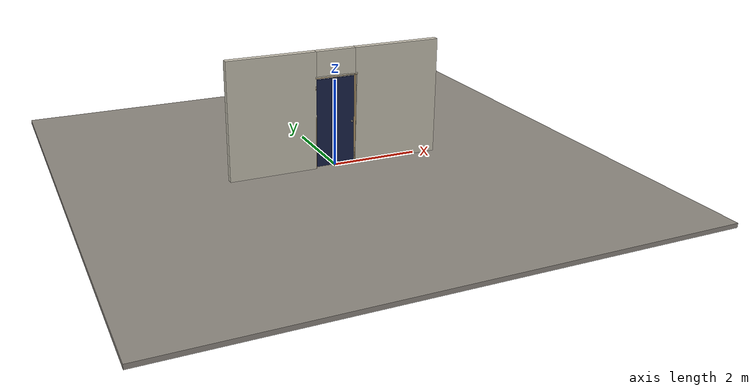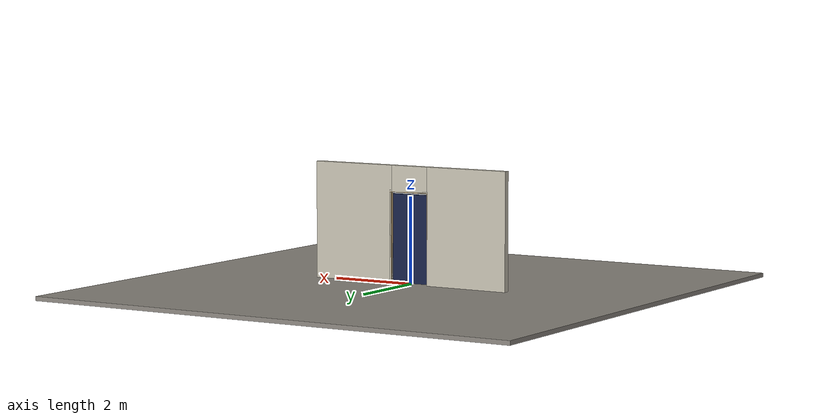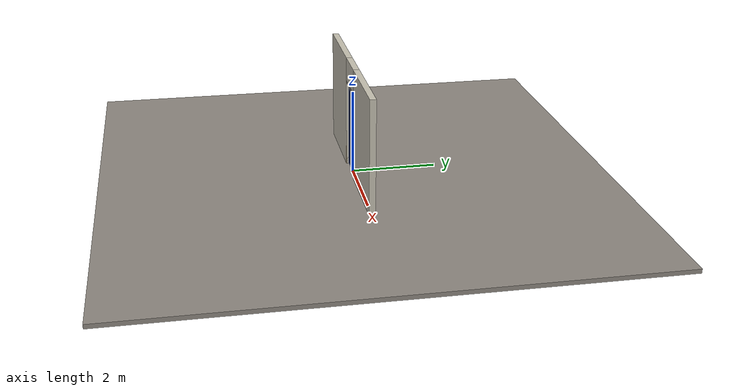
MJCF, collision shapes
<?xml version="1.0" ?>
<mujoco model="db0430_bifold_simple">
  <compiler angle="radian" meshdir="../../hardware" texturedir="../../textures" autolimits="true" inertiafromgeom="false"/>
  <option timestep="0.002" integrator="implicitfast" cone="elliptic" impratio="10" noslip_iterations="3">
    <flag multiccd="enable"/>
  </option>
  <size memory="16M"/>
  <default>
    <geom condim="4" solref="0.005 1" solimp="0.95 0.99 0.001"/>
    <joint solreflimit="0.005 1" solimplimit="0.95 0.99 0.001"/>
    <tendon solreflimit="0.005 1"/>
    <equality solref="0.002 1"/>
  </default>
  <visual>
    <headlight ambient="0.4 0.4 0.4" diffuse="0.7 0.7 0.7" specular="0.2 0.2 0.2"/>
    <quality shadowsize="4096"/>
    <map znear="0.01" zfar="60"/>
  </visual>
  <asset>
    <mesh name="knob_13f7a2a65f" file="knob_13f7a2a65f.obj"/>
    <material name="mat_floor" rgba="0.55 0.53 0.5 1" specular="0.2" shininess="0.15" reflectance="0"/>
    <material name="mat_wall" rgba="0.78 0.76 0.7 1" specular="0.2" shininess="0.1" reflectance="0"/>
    <material name="mat_frame" rgba="0.82 0.7 0.5 1" specular="0.2" shininess="0.45" reflectance="0"/>
    <material name="mat_track" rgba="0.8 0.81 0.83 1" specular="0.8" shininess="0.6" reflectance="0.4"/>
    <material name="mat_hinge" rgba="0.65 0.66 0.68 1" specular="0.74" shininess="0.5" reflectance="0.36"/>
    <material name="mat_panel_0_0" rgba="0.09 0.13 0.28 1" specular="0.2" shininess="0.36" reflectance="0"/>
    <material name="mat_panel_0_0_louver" rgba="0.076 0.111 0.238 1" specular="0.2" shininess="0.4" reflectance="0"/>
    <material name="mat_panel_0_1" rgba="0.09 0.13 0.28 1" specular="0.2" shininess="0.36" reflectance="0"/>
    <material name="mat_panel_0_1_louver" rgba="0.076 0.111 0.238 1" specular="0.2" shininess="0.4" reflectance="0"/>
    <material name="mat_op_nickel_satin" rgba="0.72 0.7 0.66 1" specular="0.8" shininess="0.65" reflectance="0.4"/>
    <texture name="skybox" type="skybox" builtin="gradient" rgb1="0.6 0.7 0.85" rgb2="0.9 0.92 0.95" width="256" height="256"/>
  </asset>
  <worldbody>
    <light name="sun" pos="1.5 -2.5 4" dir="-0.3 0.5 -0.8" directional="true" diffuse="0.8 0.8 0.8" specular="0.3 0.3 0.3" castshadow="true"/>
    <light name="fill" pos="-1.5 2.5 3" dir="0.3 -0.5 -0.7" directional="true" diffuse="0.35 0.35 0.4" castshadow="false"/>
    <camera name="robot_view" pos="0 -2.581563 1.766338" xyaxes="1 0 0 0 0.26963 0.962964" fovy="52"/>
    <camera name="far_view" pos="0 2.581563 1.766338" xyaxes="-1 0 0 0 -0.26963 0.962964" fovy="52"/>
    <camera name="iso" pos="1.961988 -2.168513 2.179388" xyaxes="0.741536 0.670913 0 -0.242917 0.268487 0.932151" fovy="46"/>
    <camera name="detail_handle" pos="0.5885 -0.8475 1.28" xyaxes="0.97561 0.219512 0 -0.070934 0.315262 0.94635" fovy="38"/>
    <geom name="floor" type="box" size="6 6 0.05" pos="0 0 -0.05" material="mat_floor" group="0" contype="1" conaffinity="1" friction="0.8 0.005 0.0001" density="2400"/>
    <geom name="wall_left" type="box" size="1.01775 0.0725 1.35" pos="-1.48225 0 1.35" material="mat_wall" group="0" contype="1" conaffinity="1" friction="0.6 0.005 0.0001" density="800"/>
    <geom name="wall_right" type="box" size="1.01775 0.0725 1.35" pos="1.48225 0 1.35" material="mat_wall" group="0" contype="1" conaffinity="1" friction="0.6 0.005 0.0001" density="800"/>
    <geom name="wall_header" type="box" size="0.4645 0.0725 0.3065" pos="0 0 2.3935" material="mat_wall" group="0" contype="1" conaffinity="1" friction="0.6 0.005 0.0001" density="800"/>
    <geom name="jamb_hinge" type="box" size="0.0095 0.0725 1.0435" pos="-0.474 0 1.0435" material="mat_frame" group="0" contype="1" conaffinity="1" friction="0.6 0.005 0.0001" density="400"/>
    <geom name="jamb_strike" type="box" size="0.0095 0.0725 1.0435" pos="0.474 0 1.0435" material="mat_frame" group="0" contype="1" conaffinity="1" friction="0.6 0.005 0.0001" density="400"/>
    <geom name="stud_strike" type="box" size="0.015 0.0725 1.0435" pos="0.4985 0 1.0435" material="mat_wall" group="0" contype="1" conaffinity="1" friction="0.6 0.005 0.0001" density="500"/>
    <geom name="jamb_head" type="box" size="0.4985 0.0725 0.0095" pos="0.015 0 2.0965" material="mat_frame" group="0" contype="1" conaffinity="1" friction="0.6 0.005 0.0001" density="400"/>
    <geom name="head_stud" type="box" size="0.4985 0.0725 0.015" pos="0.015 0 2.121" material="mat_wall" group="0" contype="1" conaffinity="1" friction="0.6 0.005 0.0001" density="500"/>
    <geom name="fold_track" type="box" size="0.4645 0.02 0.015" pos="0 0 2.072" material="mat_track" group="1" contype="0" conaffinity="0" density="2700"/>
    <site name="approach_point" pos="0 -1.5 0" quat="1 0 0 0" size="0.05" rgba="0.2 0.9 0.2 0.5" group="4"/>
    <site name="goal_point" pos="0 1.5 0" quat="1 0 0 0" size="0.05" rgba="0.2 0.9 0.2 0.5" group="4"/>
    <site name="door_plane_center" pos="0 0 1.0435" quat="1 0 0 0" size="0.02" rgba="0.2 0.9 0.2 0.5" group="4"/>
    <body name="panel_0_0" pos="-0.4645 0 0">
      <inertial pos="0.230946 0 1.04069" mass="7.100902" quat="0.499304 0.499304 -0.500695 0.500695" diaginertia="0.119284914 2.466481684 2.584322471"/>
      <joint name="panel_0_0_hinge" type="hinge" axis="0 0 -1" pos="0.035 0 0" limited="true" range="0 1.48353" damping="0.745308" frictionloss="10.359897" armature="0.02"/>
      <geom name="panel_0_0_slab" type="box" size="0.223145 0.0175 1.016" pos="0.231855 0 1.036" material="mat_panel_0_0" group="0" contype="1" conaffinity="1" friction="0.35 0.005 0.0001" density="1"/>
      <geom name="panel_0_0_pivot_pin" type="cylinder" size="0.008 0.0105" pos="0.035 0 2.0525" material="mat_hinge" group="1" contype="0" conaffinity="0" density="7850"/>
      <body name="panel_0_1" pos="0.457 0 0">
        <inertial pos="0.058186 0.010377 1.031529" mass="7.429908" quat="0.528119 0.467103 -0.530845 0.470223" diaginertia="0.152119871 2.197973543 2.349557471"/>
        <joint name="panel_0_1_hinge" type="hinge" axis="0 0 -1" pos="0 0.0175 0" limited="true" range="-3.141593 0" damping="0.2" frictionloss="0.1" armature="0.005"/>
        <geom name="panel_0_1_slab" type="box" size="0.232 0.0175 1.016" pos="0.234 0 1.036" material="mat_panel_0_1" group="0" contype="1" conaffinity="1" friction="0.35 0.005 0.0001" density="1"/>
        <geom name="panel_0_1_knuckle" type="cylinder" size="0.0045 1.006" pos="0 0.0175 1.036" material="mat_hinge" group="1" contype="0" conaffinity="0" density="7850"/>
        <geom name="panel_0_1_knob" type="mesh" mesh="knob_13f7a2a65f" pos="0.416 -0.0175 1" quat="0.707107 0.707107 0 0" material="mat_op_nickel_satin" group="1" contype="0" conaffinity="0" density="3000"/>
        <geom name="panel_0_1_knob_col" type="sphere" size="0.016" pos="0.416 -0.0475 1" material="mat_op_nickel_satin" group="0" contype="1" conaffinity="1" friction="0.6 0.005 0.0001" density="3000"/>
        <geom name="panel_0_1_knob_rose" type="cylinder" size="0.022 0.005" pos="0.416 -0.0225 1" quat="0.707107 -0.707107 0 0" material="mat_op_nickel_satin" group="1" contype="0" conaffinity="0" density="3000"/>
        <site name="panel_0_1_grip" pos="0.416 -0.0475 1" quat="1 0 0 0" size="0.012" rgba="0.2 0.9 0.2 0.5" group="4"/>
      </body>
    </body>
  </worldbody>
  <equality>
    <joint name="panel_0_1_couple" joint1="panel_0_1_hinge" joint2="panel_0_0_hinge" polycoef="0 -2 0 0 0" active="true"/>
  </equality>
  <sensor>
    <jointpos name="panel_0_0_hinge_pos" joint="panel_0_0_hinge"/>
    <jointvel name="panel_0_0_hinge_vel" joint="panel_0_0_hinge"/>
    <jointpos name="panel_0_1_hinge_pos" joint="panel_0_1_hinge"/>
    <jointvel name="panel_0_1_hinge_vel" joint="panel_0_1_hinge"/>
  </sensor>
</mujoco>
